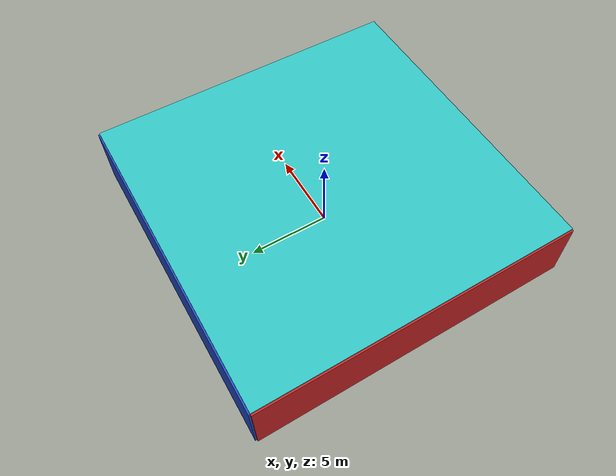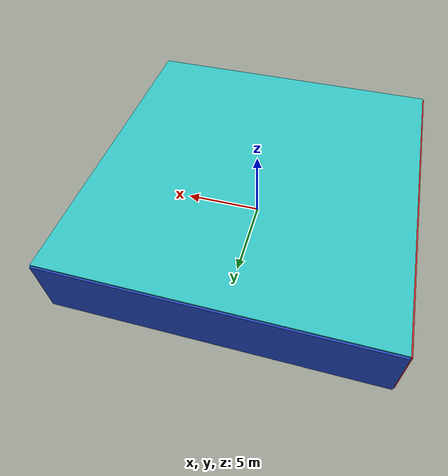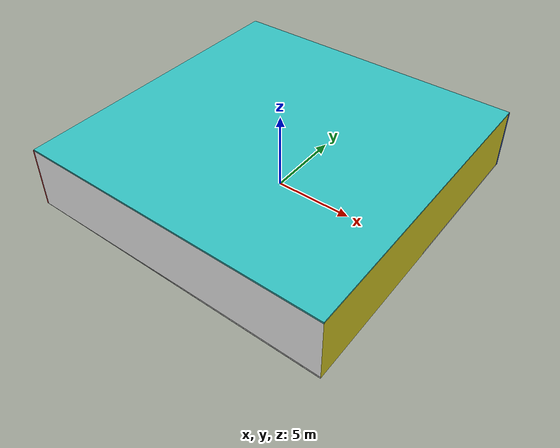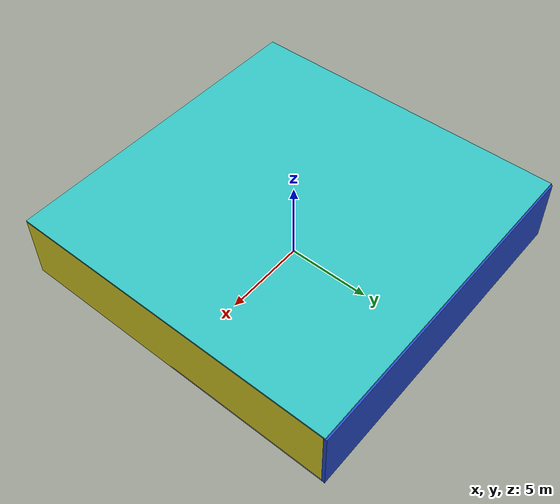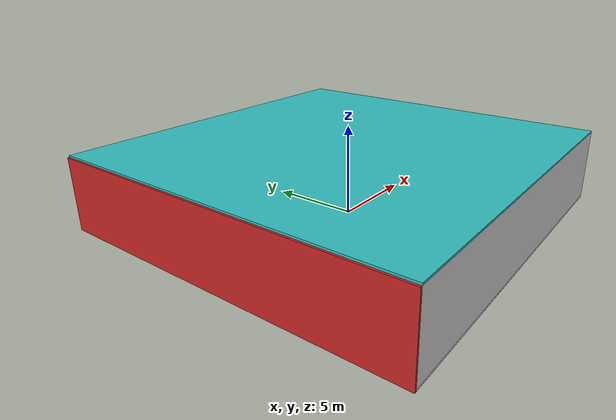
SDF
<sdf version="1.4">
 <world name="default">
  <physics type="ode">
   <max_step_size>0.001</max_step_size>
   <real_time_factor>1</real_time_factor>
   <real_time_update_rate>1000</real_time_update_rate>
   <gravity>0 0 -9.8</gravity>
  </physics>
  <scene><ambient>0.4 0.4 0.4 1</ambient><background>0.7 0.7 0.7 1</background><shadows>1</shadows></scene>
  <model name="Surrounding">
   <static>1</static>
   <link name="Ceiling">
    <collision name="Ceiling_Collision"><geometry><box><size>20 20 0.1</size></box></geometry></collision>
    <visual name="Ceiling_Visual">
     <geometry><box><size>20 20 0.1</size></box></geometry>
     <material>
      <script><uri>file://media/materials/scripts/gazebo.material</uri><name>Gazebo/Turquoise</name></script>
     </material>
    </visual>
    <pose>0 0 4.05 0 0 0</pose>
   </link>
   <link name="Wall_South">
    <collision name="Wall_South_Collision">
     <geometry><box><size>20 0 4</size></box></geometry>
     <pose>0 0 2 0 -0 0</pose>
    </collision>
    <visual name="Wall_South_Visual">
     <pose>0 0 2 0 -0 0</pose>
     <geometry><box><size>20 0 4</size></box></geometry>
     <material>
      <script><uri>file://media/materials/scripts/gazebo.material</uri><name>Gazebo/WhiteGlow</name></script>
     </material>
    </visual>
    <velocity_decay><linear>0</linear><angular>0</angular></velocity_decay>
    <pose>0 -10 0 0 -0 0</pose>
   </link>
   <link name="Wall_East">
    <collision name="Wall_21_Collision">
     <geometry><box><size>20 0 4</size></box></geometry>
     <pose>0 0 2 0 -0 0</pose>
    </collision>
    <visual name="Wall_21_Visual">
     <pose>0 0 2 0 -0 0</pose>
     <geometry><box><size>20 0 4</size></box></geometry>
     <material>
      <script><uri>file://media/materials/scripts/gazebo.material</uri><name>Gazebo/Yellow</name></script>
     </material>
    </visual>
    <velocity_decay><linear>0</linear><angular>0</angular></velocity_decay>
    <pose>10 0 0 0 -0 1.5708</pose>
   </link>
   <link name="Wall_North">
    <collision name="Wall_22_Collision">
     <geometry><box><size>20 0.2 4</size></box></geometry>
     <pose>0 0 2 0 -0 0</pose>
    </collision>
    <visual name="Wall_22_Visual">
     <pose>0 0 2 0 -0 0</pose>
     <geometry><box><size>20 0.2 4</size></box></geometry>
     <material>
      <script><uri>file://media/materials/scripts/gazebo.material</uri><name>Gazebo/BlueGlow</name></script>
     </material>
    </visual>
    <velocity_decay><linear>0</linear><angular>0</angular></velocity_decay>
    <pose>0 10 0 0 -0 0</pose>
   </link>
   <link name="Wall_West">
    <collision name="Wall_23_Collision">
     <geometry><box><size>20 0.2 4</size></box></geometry>
     <pose>0 0 2 0 -0 0</pose>
    </collision>
    <visual name="Wall_23_Visual">
     <pose>0 0 2 0 -0 0</pose>
     <geometry><box><size>20 0.2 4</size></box></geometry>
     <material>
      <script><uri>file://media/materials/scripts/gazebo.material</uri><name>Gazebo/RedBright</name></script>
     </material>
    </visual>
    <velocity_decay><linear>0</linear><angular>0</angular></velocity_decay>
    <pose>-10 0 0 0 0 -1.5708</pose>
   </link>
   <link name="Ground_link">
    <collision name="collision">
     <pose>0 0 .05 0 -0 0</pose>
     <geometry><box><size>20 20 0.1</size></box></geometry>
    </collision>
    <visual name="visual">
     <pose>0 0 .05 0 -0 0</pose>
     <geometry><box><size>20 20 0.1</size></box></geometry>
     <material>
      <script><uri>file://media/materials/scripts/gazebo.material</uri><name>Gazebo/WhiteGlow</name></script>
     </material>
    </visual>
   </link>
   <static>1</static>
  </model>
  <spherical_coordinates>
   <surface_model>EARTH_WGS84</surface_model>
   <latitude_deg>0</latitude_deg>
   <longitude_deg>0</longitude_deg>
   <elevation>0</elevation>
   <heading_deg>0</heading_deg>
  </spherical_coordinates>
  <light name="lightball_0" type="diffuse">
   <diffuse>0.8 0.8 0.8 1</diffuse>
   <specular>0.2 0.2 0.2 1</specular>
   <attenuation>
    <range>100</range>
    <constant>0.7</constant>
    <linear>0.01</linear>
    <quadratic>0.001</quadratic>
   </attenuation>
   <direction>-0.5 0.1 -0.9</direction>
   <pose>-2.61452644231 2.92192877097 3.63054528553 0 0 0</pose>
  </light>
  <light name="lightball_1" type="diffuse">
   <diffuse>0.8 0.8 0.8 1</diffuse>
   <specular>0.2 0.2 0.2 1</specular>
   <attenuation>
    <range>100</range>
    <constant>0.7</constant>
    <linear>0.01</linear>
    <quadratic>0.001</quadratic>
   </attenuation>
   <direction>-0.5 0.1 -0.9</direction>
   <pose>-9.07090784449 1.14952546099 2.89454851525 0 0 0</pose>
  </light>
  <light name="lightball_2" type="diffuse">
   <diffuse>0.8 0.8 0.8 1</diffuse>
   <specular>0.2 0.2 0.2 1</specular>
   <attenuation>
    <range>100</range>
    <constant>0.7</constant>
    <linear>0.01</linear>
    <quadratic>0.001</quadratic>
   </attenuation>
   <direction>-0.5 0.1 -0.9</direction>
   <pose>-4.3640881448 -7.65707103421 3.30202798653 0 0 0</pose>
  </light>
  <light name="lightball_3" type="diffuse">
   <diffuse>0.8 0.8 0.8 1</diffuse>
   <specular>0.2 0.2 0.2 1</specular>
   <attenuation>
    <range>100</range>
    <constant>0.7</constant>
    <linear>0.01</linear>
    <quadratic>0.001</quadratic>
   </attenuation>
   <direction>-0.5 0.1 -0.9</direction>
   <pose>8.51907313111 1.34151682887 3.41233812885 0 0 0</pose>
  </light>
  <light name="lightball_4" type="diffuse">
   <diffuse>0.8 0.8 0.8 1</diffuse>
   <specular>0.2 0.2 0.2 1</specular>
   <attenuation>
    <range>100</range>
    <constant>0.7</constant>
    <linear>0.01</linear>
    <quadratic>0.001</quadratic>
   </attenuation>
   <direction>-0.5 0.1 -0.9</direction>
   <pose>1.60438694289 5.24143849146 0.784299115711 0 0 0</pose>
  </light>
  <light name="lightball_5" type="diffuse">
   <diffuse>0.8 0.8 0.8 1</diffuse>
   <specular>0.2 0.2 0.2 1</specular>
   <attenuation>
    <range>100</range>
    <constant>0.7</constant>
    <linear>0.01</linear>
    <quadratic>0.001</quadratic>
   </attenuation>
   <direction>-0.5 0.1 -0.9</direction>
   <pose>8.38454663302 4.62739706836 1.85165994866 0 0 0</pose>
  </light>
  <light name="lightball_6" type="diffuse">
   <diffuse>0.8 0.8 0.8 1</diffuse>
   <specular>0.2 0.2 0.2 1</specular>
   <attenuation>
    <range>100</range>
    <constant>0.7</constant>
    <linear>0.01</linear>
    <quadratic>0.001</quadratic>
   </attenuation>
   <direction>-0.5 0.1 -0.9</direction>
   <pose>-8.04667047728 5.78380149947 2.8801585183 0 0 0</pose>
  </light>
  <light name="lightball_7" type="diffuse">
   <diffuse>0.8 0.8 0.8 1</diffuse>
   <specular>0.2 0.2 0.2 1</specular>
   <attenuation>
    <range>100</range>
    <constant>0.7</constant>
    <linear>0.01</linear>
    <quadratic>0.001</quadratic>
   </attenuation>
   <direction>-0.5 0.1 -0.9</direction>
   <pose>-2.23528602956 -8.83830024271 1.00321062122 0 0 0</pose>
  </light>
  <light name="lightball_8" type="diffuse">
   <diffuse>0.8 0.8 0.8 1</diffuse>
   <specular>0.2 0.2 0.2 1</specular>
   <attenuation>
    <range>100</range>
    <constant>0.7</constant>
    <linear>0.01</linear>
    <quadratic>0.001</quadratic>
   </attenuation>
   <direction>-0.5 0.1 -0.9</direction>
   <pose>-0.658754190936 2.11229278399 2.18335139108 0 0 0</pose>
  </light>
  <light name="lightball_9" type="diffuse">
   <diffuse>0.8 0.8 0.8 1</diffuse>
   <specular>0.2 0.2 0.2 1</specular>
   <attenuation>
    <range>100</range>
    <constant>0.7</constant>
    <linear>0.01</linear>
    <quadratic>0.001</quadratic>
   </attenuation>
   <direction>-0.5 0.1 -0.9</direction>
   <pose>-9.4088895788 -0.561465225807 3.69715500568 0 0 0</pose>
  </light>
  <light name="lightball_10" type="diffuse">
   <diffuse>0.8 0.8 0.8 1</diffuse>
   <specular>0.2 0.2 0.2 1</specular>
   <attenuation>
    <range>100</range>
    <constant>0.7</constant>
    <linear>0.01</linear>
    <quadratic>0.001</quadratic>
   </attenuation>
   <direction>-0.5 0.1 -0.9</direction>
   <pose>-4.33371188576 -9.8991559166 1.37814068844 0 0 0</pose>
  </light>
  <light name="lightball_11" type="diffuse">
   <diffuse>0.8 0.8 0.8 1</diffuse>
   <specular>0.2 0.2 0.2 1</specular>
   <attenuation>
    <range>100</range>
    <constant>0.7</constant>
    <linear>0.01</linear>
    <quadratic>0.001</quadratic>
   </attenuation>
   <direction>-0.5 0.1 -0.9</direction>
   <pose>6.41757267874 -9.69309605056 2.70158786469 0 0 0</pose>
  </light>
  <light name="lightball_12" type="diffuse">
   <diffuse>0.8 0.8 0.8 1</diffuse>
   <specular>0.2 0.2 0.2 1</specular>
   <attenuation>
    <range>100</range>
    <constant>0.7</constant>
    <linear>0.01</linear>
    <quadratic>0.001</quadratic>
   </attenuation>
   <direction>-0.5 0.1 -0.9</direction>
   <pose>2.66020852368 -0.23563602669 1.61882046032 0 0 0</pose>
  </light>
  <include>
   <uri>model://textured_shapes</uri>
   <pose>-6.88426169599 7.82777934925 0 0 0 1.06595966127</pose>
  </include>
  <include><uri>model://cabinet</uri><pose>-5.00274390139 -5.29910501868 0 0 0 0.962493390463</pose></include>
  <include><uri>model://cabinet</uri><pose>-4.59390377297 1.65731412495 0 0 0 2.37143806277</pose></include>
  <include>
   <uri>model://construction_cone</uri>
   <pose>-5.12881933944 4.76406624834 0 0 0 0.897609744069</pose>
  </include>
  <include><uri>model://cabinet</uri><pose>-1.68822256439 7.83598334479 0 0 0 0.949939254643</pose></include>
  <include><uri>model://cabinet</uri><pose>0.723519840699 -0.798380019497 0 0 0 0.942907294736</pose></include>
  <include><uri>model://cabinet</uri><pose>4.99764328901 -1.78572513382 0 0 0 2.56826903906</pose></include>
  <include><uri>model://cabinet</uri><pose>8.0877153551 -8.24889379185 0 0 0 0.94033487765</pose></include>
  <include><uri>model://cabinet</uri><pose>6.95046225293 8.25816082722 0 0 0 2.96486684394</pose></include>
 </world>
</sdf>

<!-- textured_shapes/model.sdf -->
<sdf version="1.6">
  <model name="textured_shapes">
    <pose>0 0 0.5 0 0 0</pose>
    <link name="box">
      <pose>0 -1.5 0 0 0 0</pose>
      <collision name="collision">
        <geometry>
          <box>
            <size>1 1 1</size>
          </box>
        </geometry>
      </collision>
      <visual name="visual">
        <geometry>
          <box>
            <size>1 1 1</size>
          </box>
        </geometry>
        <material>
          <script>
            <uri>model://../model_source/models/textured_shapes/materials/scripts</uri>
            <uri>model://../model_source/models/textured_shapes/materials/textures</uri>
            <name>TexturedShape/Squares</name>
          </script>
        </material>
      </visual>
    </link>
    <link name="sphere">
      <collision name="collision">
        <geometry>
          <sphere>
            <radius>0.5</radius>
          </sphere>
        </geometry>
      </collision>
      <visual name="visual">
        <geometry>
          <sphere>
            <radius>0.5</radius>
          </sphere>
        </geometry>
        <material>
          <script>
            <uri>model://../model_source/models/textured_shapes/materials/scripts</uri>
            <uri>model://../model_source/models/textured_shapes/materials/textures</uri>
            <name>TexturedShape/Squares</name>
          </script>
        </material>
      </visual>
    </link>
    <link name="cylinder">
      <pose>0 1.5 0 0 0 0</pose>
      <collision name="collision">
        <geometry>
          <cylinder>
            <radius>0.5</radius>
            <length>1</length>
          </cylinder>
        </geometry>
      </collision>
      <visual name="visual">
        <geometry>
          <cylinder>
            <radius>0.5</radius>
            <length>1</length>
          </cylinder>
        </geometry>
        <material>
          <script>
            <uri>model://../model_source/models/textured_shapes/materials/scripts</uri>
            <uri>model://../model_source/models/textured_shapes/materials/textures</uri>
            <name>TexturedShape/Squares</name>
          </script>
        </material>
      </visual>
    </link>
  </model>
</sdf>

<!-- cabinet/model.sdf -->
<sdf version="1.5">
  <model name="cabinet">
    <static>true</static>
    <link name="cabinet_bottom_plate">
      <inertial>
        <pose>0 0 -1 0 0 0</pose>
        <inertia>
          <ixx>2.050000</ixx>
          <ixy>0</ixy>
          <ixz>0</ixz>
          <iyy>2.050000</iyy>
          <iyz>0</iyz>
          <izz>2.050000</izz>
        </inertia>
        <mass>25.000000</mass>
      </inertial>
      <collision name="cabinet_bottom_plate_geom">
        <pose>0 0 0.010000 0 0 0</pose>
        <geometry>
          <box>
            <size>0.450000 0.450000 0.020000</size>
          </box>
        </geometry>
      </collision>
      <visual name="cabinet_bottom_plate_geom_visual">
        <pose>0 0 0.010000 0 0 0</pose>
        <geometry>
          <box>
            <size>0.450000 0.450000 0.020000</size>
          </box>
        </geometry>
        <material>
          <script>
            <uri>model://media/materials/scripts/gazebo.material</uri>
            <name>Gazebo/Wood</name>
          </script>
        </material>
      </visual>
      <collision name="cabinet_bottom_plate_geom_cabinet_back_plate">
        <pose>0.235000 0 0.510000 0 0 0</pose>
        <geometry>
          <box>
            <size>0.020000 0.450000 1.020000</size>
          </box>
        </geometry>
      </collision>
      <visual name="cabinet_bottom_plate_geom_cabinet_back_plate_visual">
        <pose>0.235000 0 0.510000 0 0 0</pose>
        <geometry>
          <box>
            <size>0.020000 0.450000 1.020000</size>
          </box>
        </geometry>
        <material>
          <script>
            <uri>model://media/materials/scripts/gazebo.material</uri>
            <name>Gazebo/Wood</name>
          </script>
        </material>
      </visual>
      <collision name="cabinet_bottom_plate_geom_cabinet_left_plate">
        <pose>0 0.235000 0.510000 0 0 0</pose>
        <geometry>
          <box>
            <size>0.450000 0.020000 1.020000</size>
          </box>
        </geometry>
      </collision>
      <visual name="cabinet_bottom_plate_geom_cabinet_left_plate_visual">
        <pose>0 0.235000 0.510000 0 0 0</pose>
        <geometry>
          <box>
            <size>0.450000 0.020000 1.020000</size>
          </box>
        </geometry>
        <material>
          <script>
            <uri>model://media/materials/scripts/gazebo.material</uri>
            <name>Gazebo/Wood</name>
          </script>
        </material>
      </visual>
      <collision name="cabinet_bottom_plate_geom_cabinet_middle_plate">
        <pose>0 0 0.510000 0 0 0</pose>
        <geometry>
          <box>
            <size>0.450000 0.450000 0.020000</size>
          </box>
        </geometry>
      </collision>
      <visual name="cabinet_bottom_plate_geom_cabinet_middle_plate_visual">
        <pose>0 0 0.510000 0 0 0</pose>
        <geometry>
          <box>
            <size>0.450000 0.450000 0.020000</size>
          </box>
        </geometry>
        <material>
          <script>
            <uri>model://media/materials/scripts/gazebo.material</uri>
            <name>Gazebo/Wood</name>
          </script>
        </material>
      </visual>
      <collision name="cabinet_bottom_plate_geom_cabinet_right_plate">
        <pose>0 -0.235000 0.510000 0 0 0</pose>
        <geometry>
          <box>
            <size>0.450000 0.020000 1.020000</size>
          </box>
        </geometry>
      </collision>
      <visual name="cabinet_bottom_plate_geom_cabinet_right_plate_visual">
        <pose>0 -0.235000 0.510000 0 0 0</pose>
        <geometry>
          <box>
            <size>0.450000 0.020000 1.020000</size>
          </box>
        </geometry>
        <material>
          <script>
            <uri>model://media/materials/scripts/gazebo.material</uri>
            <name>Gazebo/Wood</name>
          </script>
        </material>
      </visual>
      <collision name="cabinet_bottom_plate_geom_cabinet_top_plate">
        <pose>0 0 1.010000 0 0 0</pose>
        <geometry>
          <box>
            <size>0.450000 0.450000 0.020000</size>
          </box>
        </geometry>
      </collision>
      <visual name="cabinet_bottom_plate_geom_cabinet_top_plate_visual">
        <pose>0 0 1.010000 0 0 0</pose>
        <geometry>
          <box>
            <size>0.450000 0.450000 0.020000</size>
          </box>
        </geometry>
        <material>
          <script>
            <uri>model://media/materials/scripts/gazebo.material</uri>
            <name>Gazebo/Wood</name>
          </script>
        </material>
      </visual>
    </link>
  </model>
</sdf>

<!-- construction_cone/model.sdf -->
<sdf version="1.5">
  <model name="Construction Cone">
    <link name="link">
      <collision name="collision">
        <geometry>
          <mesh>
            <scale>10 10 10</scale>
            <uri>file://isr-testbed/construction_cone/meshes/construction_cone.dae</uri>
          </mesh>
        </geometry>
      </collision>
      <visual name="visual">
        <geometry>
          <mesh>
            <scale>10 10 10</scale>
            <uri>file://isr-testbed/construction_cone/meshes/construction_cone.dae</uri>
          </mesh>
        </geometry>
      </visual>
    </link>
  </model>
</sdf>
